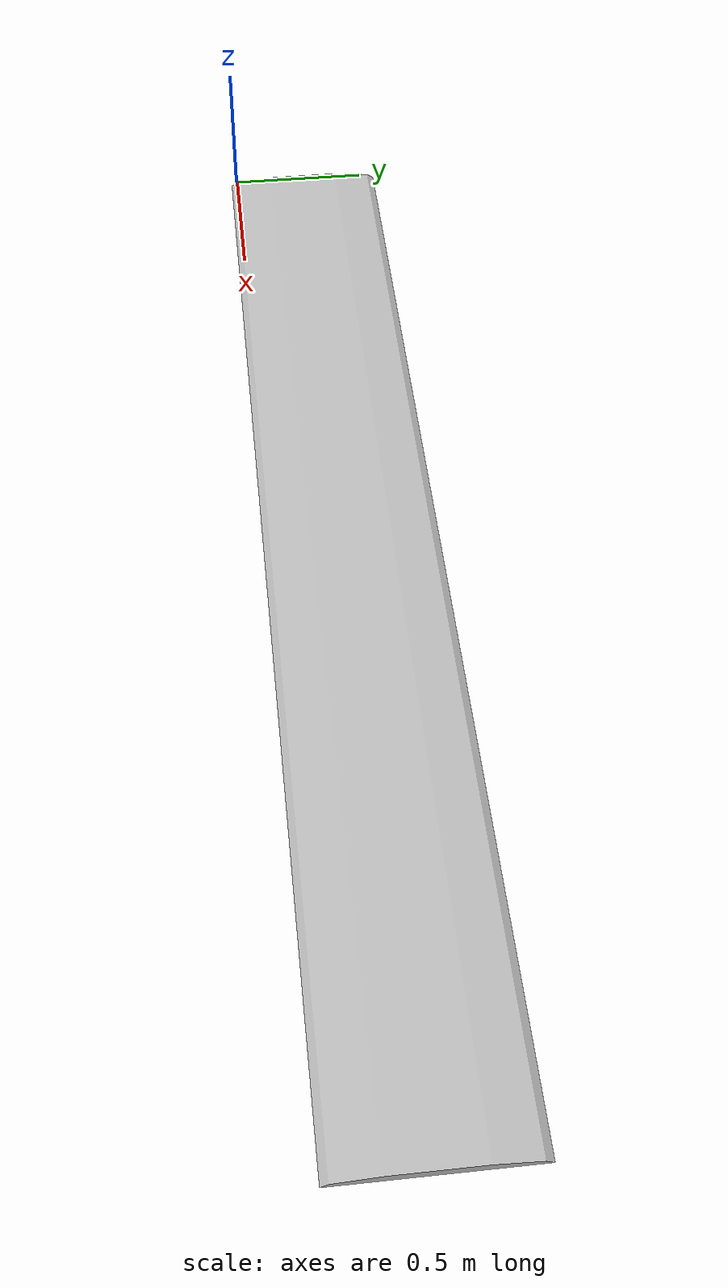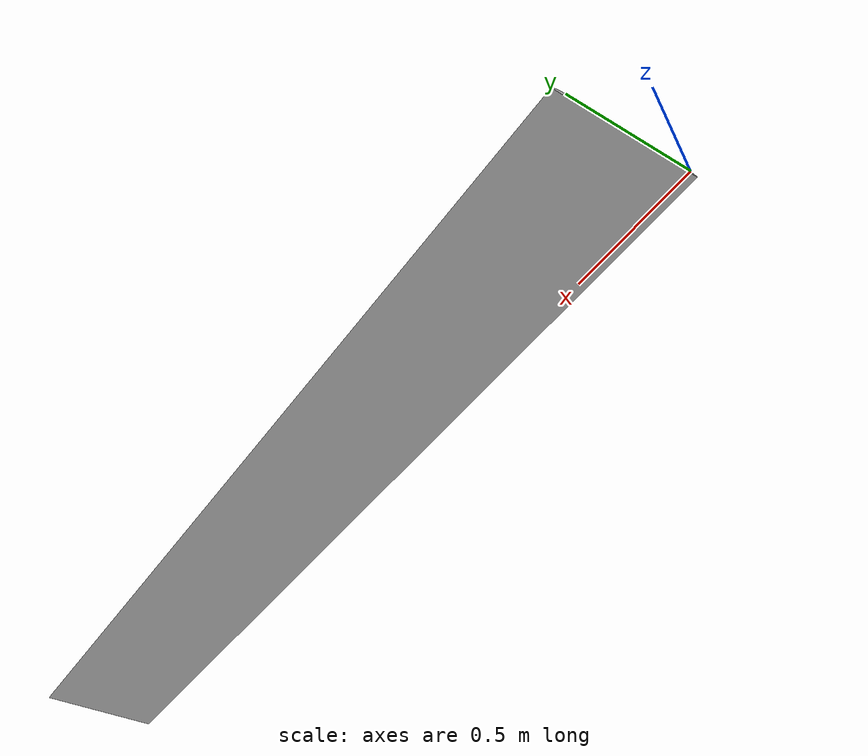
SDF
<?xml version="1.0" ?>
<sdf version="1.6">
  <model name="speed_bump_1_short">
    <static>true</static>
    <link name="link">
      <collision name="collision">
        <geometry>
          <mesh>
            <uri>model://speed_bump_1_short//bump_2_060.dae</uri>
          </mesh>
        </geometry>
        <surface>
          <friction>
            <ode>
              <mu>0.9</mu>
              <mu2>0.6</mu2>
            </ode>
          </friction>
        </surface>
      </collision>
      <visual name="visual">
        <geometry>
          <mesh>
            <uri>model://speed_bump_1_short//bump_2_060.dae</uri>
          </mesh>
        </geometry>
      </visual>
    </link>
  </model>
</sdf>
